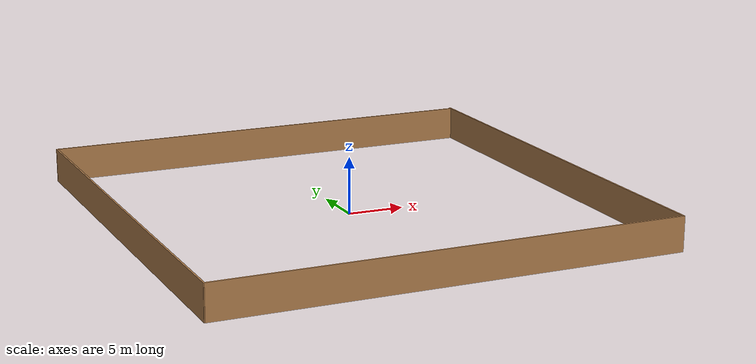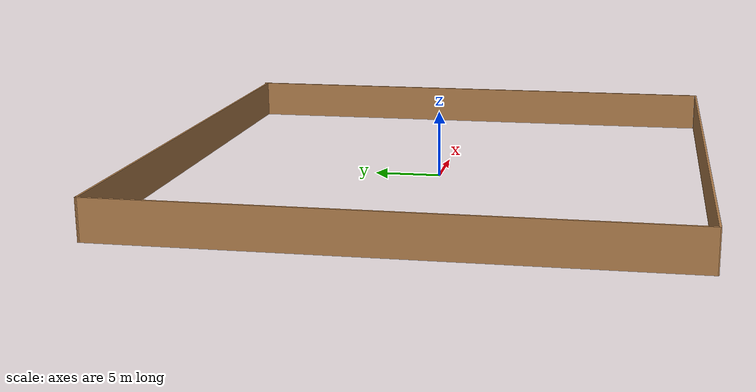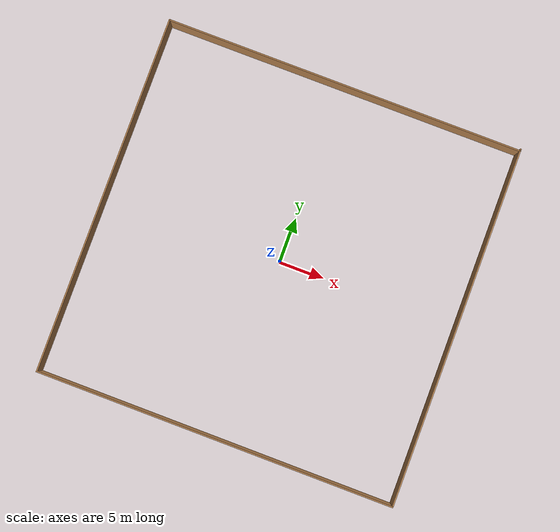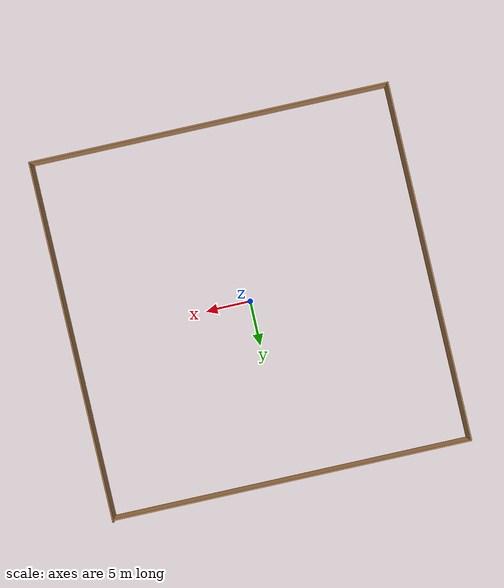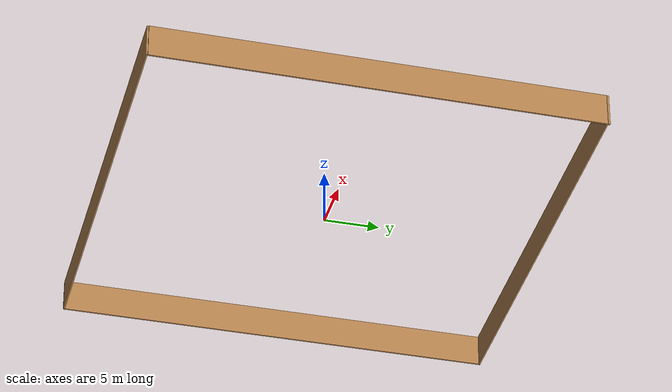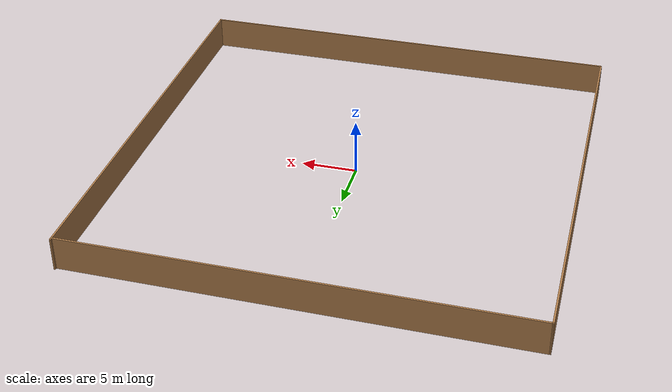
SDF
<?xml version='1.0'?>
<sdf version='1.6'>
  <model name='land_wall'>
    <link name='Wall_21'>
      <pose frame=''>-19.925 0.17041 0 0 0 -1.56957</pose>
      <self_collide>0</self_collide>
      <enable_wind>0</enable_wind>
      <kinematic>0</kinematic>
      <visual name='Wall_21_Visual'>
        <pose frame=''>0 0 1.5 0 -0 0</pose>
        <geometry>
          <box>
            <size>40 0.15 3</size>
          </box>
        </geometry>
        <material>
          <script>
            <uri>file://media/materials/scripts/gazebo.material</uri>
            <name>Gazebo/Wood</name>
          </script>
          <ambient>1 1 1 1</ambient>
          <shader type='pixel'/>
        </material>
        <meta>
          <layer>0</layer>
        </meta>
        <transparency>0</transparency>
        <cast_shadows>1</cast_shadows>
      </visual>
      <collision name='Wall_21_Collision'>
        <laser_retro>0</laser_retro>
        <max_contacts>10</max_contacts>
        <pose frame=''>0 0 1.5 0 -0 0</pose>
        <geometry>
          <box>
            <size>40 0.15 3</size>
          </box>
        </geometry>
        <surface>
          <friction>
            <ode>
              <mu>1</mu>
              <mu2>1</mu2>
              <fdir1>0 0 0</fdir1>
              <slip1>0</slip1>
              <slip2>0</slip2>
            </ode>
            <torsional>
              <coefficient>1</coefficient>
              <patch_radius>0</patch_radius>
              <surface_radius>0</surface_radius>
              <use_patch_radius>1</use_patch_radius>
              <ode>
                <slip>0</slip>
              </ode>
            </torsional>
          </friction>
          <bounce>
            <restitution_coefficient>0</restitution_coefficient>
            <threshold>1e+06</threshold>
          </bounce>
          <contact>
            <collide_without_contact>0</collide_without_contact>
            <collide_without_contact_bitmask>1</collide_without_contact_bitmask>
            <collide_bitmask>1</collide_bitmask>
            <ode>
              <soft_cfm>0</soft_cfm>
              <soft_erp>0.2</soft_erp>
              <kp>1e+13</kp>
              <kd>1</kd>
              <max_vel>0.01</max_vel>
              <min_depth>0</min_depth>
            </ode>
            <bullet>
              <split_impulse>1</split_impulse>
              <split_impulse_penetration_threshold>-0.01</split_impulse_penetration_threshold>
              <soft_cfm>0</soft_cfm>
              <soft_erp>0.2</soft_erp>
              <kp>1e+13</kp>
              <kd>1</kd>
            </bullet>
          </contact>
        </surface>
      </collision>
    </link>
    <link name='Wall_24'>
      <pose frame=''>0.0245 -19.925 0 0 0 -0.008552</pose>
      <self_collide>0</self_collide>
      <enable_wind>0</enable_wind>
      <kinematic>0</kinematic>
      <visual name='Wall_24_Visual'>
        <pose frame=''>0 0 1.5 0 -0 0</pose>
        <geometry>
          <box>
            <size>40.0015 0.15 3</size>
          </box>
        </geometry>
        <material>
          <script>
            <uri>file://media/materials/scripts/gazebo.material</uri>
            <name>Gazebo/Wood</name>
          </script>
          <ambient>1 1 1 1</ambient>
          <shader type='pixel'/>
        </material>
        <meta>
          <layer>0</layer>
        </meta>
        <transparency>0</transparency>
        <cast_shadows>1</cast_shadows>
      </visual>
      <collision name='Wall_24_Collision'>
        <laser_retro>0</laser_retro>
        <max_contacts>10</max_contacts>
        <pose frame=''>0 0 1.5 0 -0 0</pose>
        <geometry>
          <box>
            <size>40.0015 0.15 3</size>
          </box>
        </geometry>
        <surface>
          <friction>
            <ode>
              <mu>1</mu>
              <mu2>1</mu2>
              <fdir1>0 0 0</fdir1>
              <slip1>0</slip1>
              <slip2>0</slip2>
            </ode>
            <torsional>
              <coefficient>1</coefficient>
              <patch_radius>0</patch_radius>
              <surface_radius>0</surface_radius>
              <use_patch_radius>1</use_patch_radius>
              <ode>
                <slip>0</slip>
              </ode>
            </torsional>
          </friction>
          <bounce>
            <restitution_coefficient>0</restitution_coefficient>
            <threshold>1e+06</threshold>
          </bounce>
          <contact>
            <collide_without_contact>0</collide_without_contact>
            <collide_without_contact_bitmask>1</collide_without_contact_bitmask>
            <collide_bitmask>1</collide_bitmask>
            <ode>
              <soft_cfm>0</soft_cfm>
              <soft_erp>0.2</soft_erp>
              <kp>1e+13</kp>
              <kd>1</kd>
              <max_vel>0.01</max_vel>
              <min_depth>0</min_depth>
            </ode>
            <bullet>
              <split_impulse>1</split_impulse>
              <split_impulse_penetration_threshold>-0.01</split_impulse_penetration_threshold>
              <soft_cfm>0</soft_cfm>
              <soft_erp>0.2</soft_erp>
              <kp>1e+13</kp>
              <kd>1</kd>
            </bullet>
          </contact>
        </surface>
      </collision>
    </link>
    <link name='Wall_26'>
      <pose frame=''>-0.0245 19.925 0 0 0 -0.008552</pose>
      <self_collide>0</self_collide>
      <enable_wind>0</enable_wind>
      <kinematic>0</kinematic>
      <visual name='Wall_26_Visual'>
        <pose frame=''>0 0 1.5 0 -0 0</pose>
        <geometry>
          <box>
            <size>40.0015 0.15 3</size>
          </box>
        </geometry>
        <material>
          <script>
            <uri>file://media/materials/scripts/gazebo.material</uri>
            <name>Gazebo/Wood</name>
          </script>
          <ambient>1 1 1 1</ambient>
          <shader type='pixel'/>
        </material>
        <meta>
          <layer>0</layer>
        </meta>
        <transparency>0</transparency>
        <cast_shadows>1</cast_shadows>
      </visual>
      <collision name='Wall_26_Collision'>
        <laser_retro>0</laser_retro>
        <max_contacts>10</max_contacts>
        <pose frame=''>0 0 1.5 0 -0 0</pose>
        <geometry>
          <box>
            <size>40.0015 0.15 3</size>
          </box>
        </geometry>
        <surface>
          <friction>
            <ode>
              <mu>1</mu>
              <mu2>1</mu2>
              <fdir1>0 0 0</fdir1>
              <slip1>0</slip1>
              <slip2>0</slip2>
            </ode>
            <torsional>
              <coefficient>1</coefficient>
              <patch_radius>0</patch_radius>
              <surface_radius>0</surface_radius>
              <use_patch_radius>1</use_patch_radius>
              <ode>
                <slip>0</slip>
              </ode>
            </torsional>
          </friction>
          <bounce>
            <restitution_coefficient>0</restitution_coefficient>
            <threshold>1e+06</threshold>
          </bounce>
          <contact>
            <collide_without_contact>0</collide_without_contact>
            <collide_without_contact_bitmask>1</collide_without_contact_bitmask>
            <collide_bitmask>1</collide_bitmask>
            <ode>
              <soft_cfm>0</soft_cfm>
              <soft_erp>0.2</soft_erp>
              <kp>1e+13</kp>
              <kd>1</kd>
              <max_vel>0.01</max_vel>
              <min_depth>0</min_depth>
            </ode>
            <bullet>
              <split_impulse>1</split_impulse>
              <split_impulse_penetration_threshold>-0.01</split_impulse_penetration_threshold>
              <soft_cfm>0</soft_cfm>
              <soft_erp>0.2</soft_erp>
              <kp>1e+13</kp>
              <kd>1</kd>
            </bullet>
          </contact>
        </surface>
      </collision>
    </link>
    <link name='Wall_28'>
      <pose frame=''>19.925 0 0 0 0 -1.56957</pose>
      <self_collide>0</self_collide>
      <enable_wind>0</enable_wind>
      <kinematic>0</kinematic>
      <visual name='Wall_28_Visual'>
        <pose frame=''>0 0 1.5 0 -0 0</pose>
        <geometry>
          <box>
            <size>40 0.15 3</size>
          </box>
        </geometry>
        <material>
          <script>
            <uri>file://media/materials/scripts/gazebo.material</uri>
            <name>Gazebo/Wood</name>
          </script>
          <ambient>1 1 1 1</ambient>
          <shader type='pixel'/>
        </material>
        <meta>
          <layer>0</layer>
        </meta>
        <transparency>0</transparency>
        <cast_shadows>1</cast_shadows>
      </visual>
      <collision name='Wall_28_Collision'>
        <laser_retro>0</laser_retro>
        <max_contacts>10</max_contacts>
        <pose frame=''>0 0 1.5 0 -0 0</pose>
        <geometry>
          <box>
            <size>40 0.15 3</size>
          </box>
        </geometry>
        <surface>
          <friction>
            <ode>
              <mu>1</mu>
              <mu2>1</mu2>
              <fdir1>0 0 0</fdir1>
              <slip1>0</slip1>
              <slip2>0</slip2>
            </ode>
            <torsional>
              <coefficient>1</coefficient>
              <patch_radius>0</patch_radius>
              <surface_radius>0</surface_radius>
              <use_patch_radius>1</use_patch_radius>
              <ode>
                <slip>0</slip>
              </ode>
            </torsional>
          </friction>
          <bounce>
            <restitution_coefficient>0</restitution_coefficient>
            <threshold>1e+06</threshold>
          </bounce>
          <contact>
            <collide_without_contact>0</collide_without_contact>
            <collide_without_contact_bitmask>1</collide_without_contact_bitmask>
            <collide_bitmask>1</collide_bitmask>
            <ode>
              <soft_cfm>0</soft_cfm>
              <soft_erp>0.2</soft_erp>
              <kp>1e+13</kp>
              <kd>1</kd>
              <max_vel>0.01</max_vel>
              <min_depth>0</min_depth>
            </ode>
            <bullet>
              <split_impulse>1</split_impulse>
              <split_impulse_penetration_threshold>-0.01</split_impulse_penetration_threshold>
              <soft_cfm>0</soft_cfm>
              <soft_erp>0.2</soft_erp>
              <kp>1e+13</kp>
              <kd>1</kd>
            </bullet>
          </contact>
        </surface>
      </collision>
    </link>
    <static>1</static>
    <allow_auto_disable>1</allow_auto_disable>
  </model>
</sdf>
